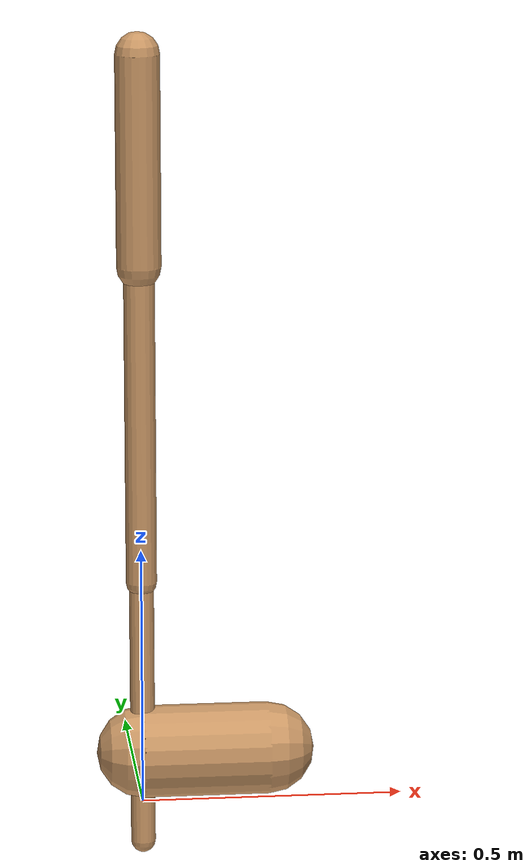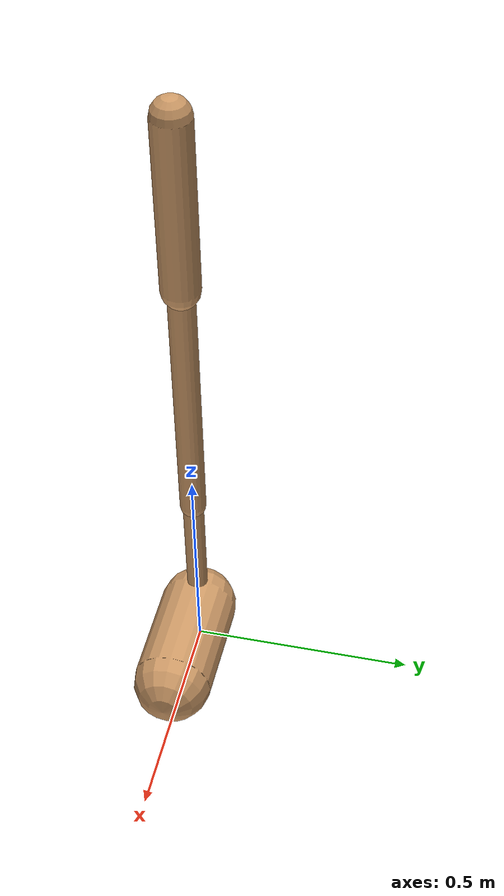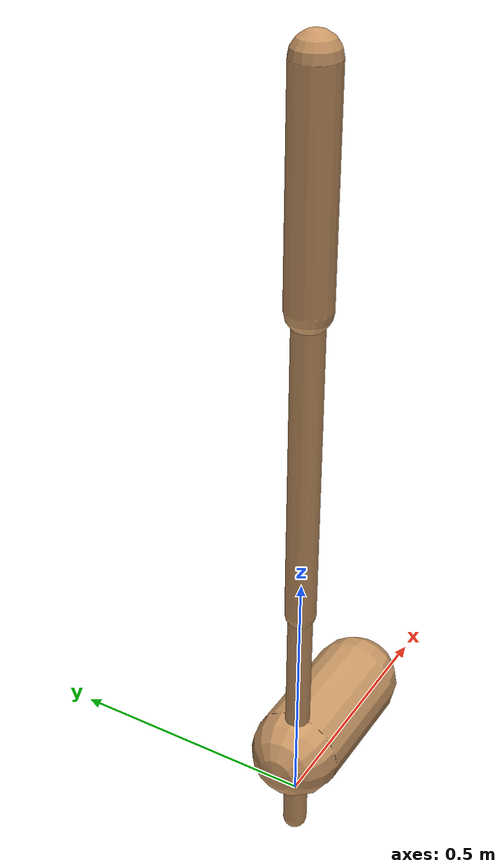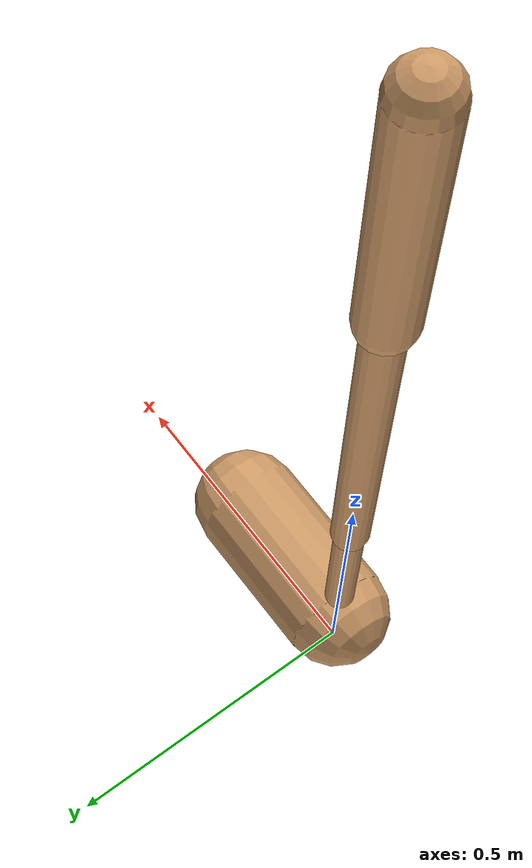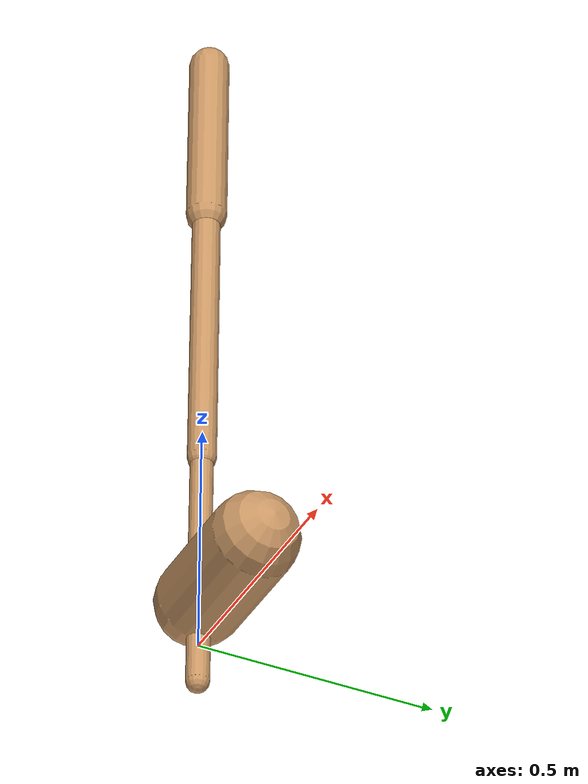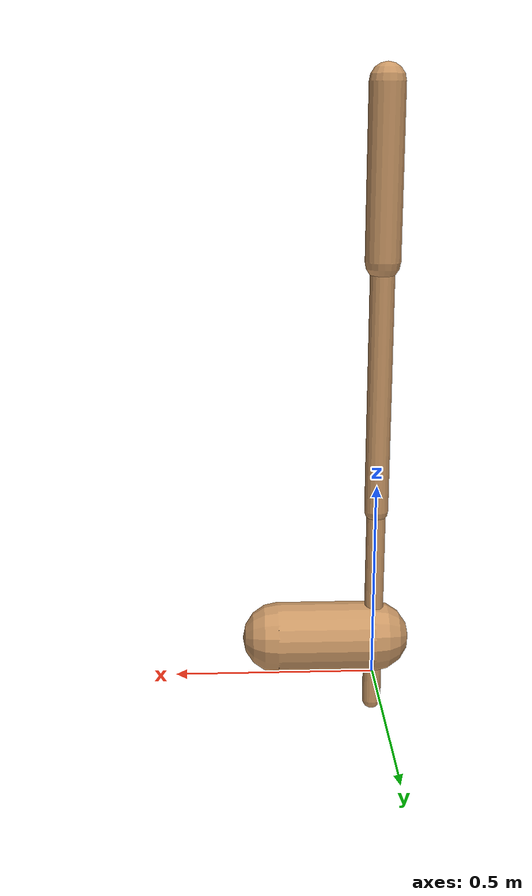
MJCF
<mujoco model="walker2d">
  <compiler angle="degree" coordinate="global" inertiafromgeom="true" />
  <default>
    <joint armature="0.01" damping=".1" limited="true" />
    <geom conaffinity="0" condim="3" contype="1" density="1000" friction="0.8 .1 .1" rgba="0.8 0.6 .4 1" />
  </default>
  <option integrator="RK4" timestep="0.002" />
  <worldbody>

    <body name="torso" pos="0 0 0.34044164910602603">
      <joint armature="0" axis="1 0 0" damping="0" limited="false" name="ignorex" pos="0 0 0" stiffness="0" type="slide" />
      <joint armature="0" axis="0 0 1" damping="0" limited="false" name="ignorez" pos="0 0 0" ref="1.25" stiffness="0" type="slide" />
      <joint armature="0" axis="0 1 0" damping="0" limited="false" name="ignorey" pos="0 0 0" stiffness="0" type="hinge" />
      <geom fromto="0 0 1.45 0 0 1.05" name="torso_geom" size="0.04222870879906401" type="capsule" />
      <body name="thigh">
        <joint axis="0 -1 0" name="thigh_joint" pos="0 0 1.05" range="-150 0" type="hinge" />
        <geom fromto="0.0 0.0 1.05 0.0 0.0 0.43873816621293504" name="thigh_geom" size="0.02939199878969885" type="capsule" />
        <body name="leg" pos="0.0 0.0 -0.16126183378706493">
          <joint axis="0 -1 0" name="leg_joint" pos="0 0 0.6" range="-150 0" type="hinge" />
          <geom fromto="0.0 0.0 0.6 0.0 0.0 -0.07917981531896104" name="leg_geom" size="0.023513599031759078" type="capsule" />
          <body name="foot" pos="0.0 0.0 -0.17917981531896104">
            <joint axis="0 -1 0" name="foot_joint" pos="0 0 0.1" range="-45 45" type="hinge" />
            <geom fromto="-0.0 0.0 0.1 0.24162704640171562 0.0 0.1" name="foot_geom" size="0.08823895485102315" type="capsule" />
          </body>
        </body>
      </body>

      <body name="thigh_left">
        <joint axis="0 -1 0" name="thigh_left_joint" pos="0 0 1.05" range="-150 0" type="hinge" />
        <geom fromto="0.0 0.0 1.05 0.0 0.0 0.43873816621293504" name="thigh_left_geom" rgba=".7 .3 .6 1" size="0.02939199878969885" type="capsule" />
        <body name="leg_left" pos="0.0 0.0 -0.16126183378706493">
          <joint axis="0 -1 0" name="leg_left_joint" pos="0 0 0.6" range="-150 0" type="hinge" />
          <geom fromto="0.0 0.0 0.6 0.0 0.0 -0.07917981531896104" name="leg_left_geom" rgba=".7 .3 .6 1" size="0.023513599031759078" type="capsule" />
          <body name="foot_left" pos="0.0 0.0 -0.17917981531896104">
            <joint axis="0 -1 0" name="foot_left_joint" pos="0 0 0.1" range="-45 45" type="hinge" />
            <geom fromto="-0.0 0.0 0.1 0.24162704640171562 0.0 0.1" name="foot_left_geom" rgba=".7 .3 .6 1" size="0.08823895485102315" type="capsule" />
          </body>
        </body>
      </body>
    </body>
  </worldbody>
  <actuator>

    <motor ctrllimited="true" ctrlrange="-1.0 1.0" gear="100" joint="thigh_joint" />
    <motor ctrllimited="true" ctrlrange="-1.0 1.0" gear="100" joint="leg_joint" />
    <motor ctrllimited="true" ctrlrange="-1.0 1.0" gear="100" joint="foot_joint" />
    <motor ctrllimited="true" ctrlrange="-1.0 1.0" gear="100" joint="thigh_left_joint" />
    <motor ctrllimited="true" ctrlrange="-1.0 1.0" gear="100" joint="leg_left_joint" />
    <motor ctrllimited="true" ctrlrange="-1.0 1.0" gear="100" joint="foot_left_joint" />

  </actuator>
</mujoco>
